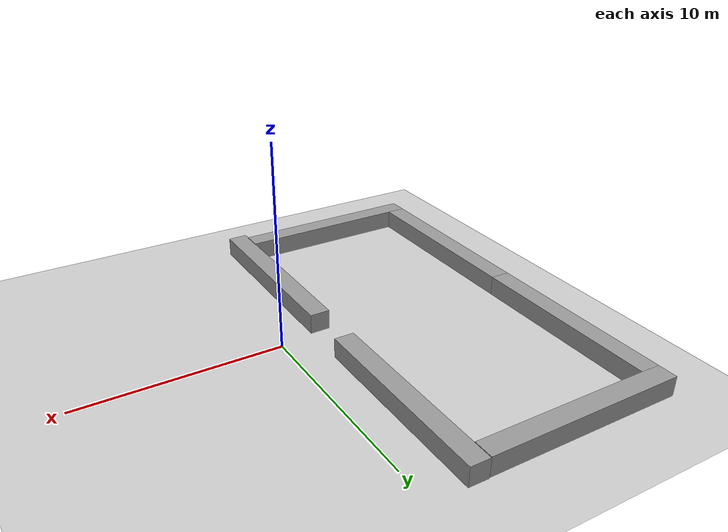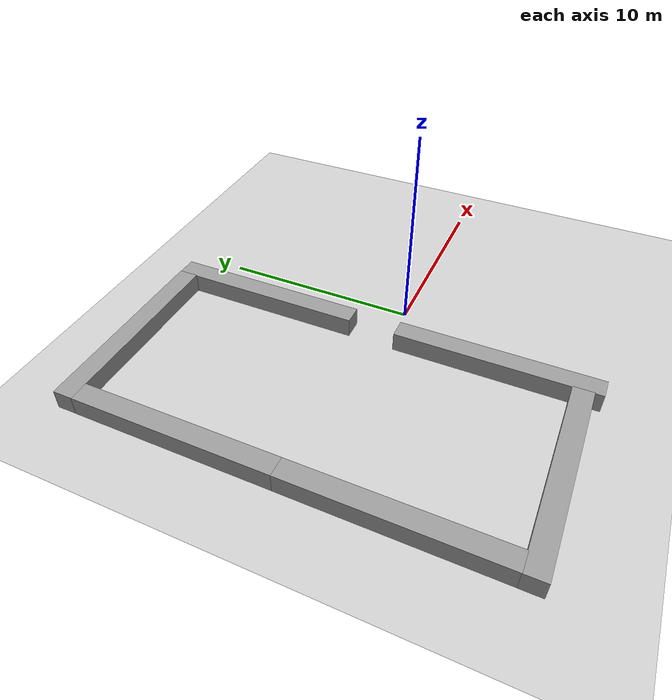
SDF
<sdf version="1.6">
 <world name="default">
  <physics name="default_physics" default="0" type="ode">
   <real_time_factor>1</real_time_factor>
   <real_time_update_rate>250</real_time_update_rate>
   <max_step_size>0.004</max_step_size>
   <ode>
    <solver>
     <iters>20</iters>
     <type>quick</type>
     <sor>1.3</sor>
     <use_dynamic_moi_rescaling>0</use_dynamic_moi_rescaling>
    </solver>
    <constraints>
     <cfm>0</cfm>
     <erp>0.2</erp>
     <contact_max_correcting_vel>100</contact_max_correcting_vel>
     <contact_surface_layer>0.001</contact_surface_layer>
    </constraints>
   </ode>
  </physics>
  <model name="ground_plane">
   <static>1</static>
   <link name="link">
    <collision name="collision">
     <geometry><plane><normal>0 0 1</normal><size>100 100</size></plane></geometry>
     <surface>
      <contact><collide_bitmask>65535</collide_bitmask></contact>
      <friction><ode><mu>100</mu><mu2>50</mu2></ode></friction>
     </surface>
    </collision>
    <visual name="visual">
     <cast_shadows>0</cast_shadows>
     <geometry><plane><normal>0 0 1</normal><size>100 100</size></plane></geometry>
     <material>
      <script><uri>file://media/materials/scripts/gazebo.material</uri><name>Gazebo/Grey</name></script>
     </material>
    </visual>
   </link>
  </model>
  <light name="sun" type="directional">
   <pose>0 0 10 0 -0 0</pose>
   <diffuse>0.8 0.8 0.8 1</diffuse>
   <specular>0.2 0.2 0.2 1</specular>
   <attenuation>
    <range>1000</range>
    <constant>0.9</constant>
    <linear>0.01</linear>
    <quadratic>0.001</quadratic>
   </attenuation>
   <direction>-0.5 0.1 -0.9</direction>
  </light>
  <scene>
   <grid>1</grid>
   <origin_visual>1</origin_visual>
   <ambient>0.8 0.8 0.8 1</ambient>
   <shadows>1</shadows>
   <background>0.7 0.7 0.7 1</background>
  </scene>
  <gravity>0 0 -9.8</gravity>
  <magnetic_field>6e-06 2.3e-05 -4.2e-05</magnetic_field>
  <atmosphere type="adiabatic"/>
  <audio><device>default</device></audio>
  <spherical_coordinates>
   <surface_model>EARTH_WGS84</surface_model>
   <latitude_deg>0</latitude_deg>
   <longitude_deg>0</longitude_deg>
   <elevation>0</elevation>
   <heading_deg>0</heading_deg>
  </spherical_coordinates>
  <model name="unit_box10">
   <link name="link">
    <inertial>
     <mass>10</mass>
     <inertia><ixx>84.1667</ixx><ixy>0</ixy><ixz>0</ixz><iyy>1.66667</iyy><iyz>0</iyz><izz>84.1667</izz></inertia>
    </inertial>
    <kinematic>1</kinematic>
    <pose>0 0 1.2228 0 -0 0</pose>
    <visual name="visual">
     <geometry><box><size>1 10 1</size></box></geometry>
     <material>
      <script><name>Gazebo/Grey</name><uri>file://media/materials/scripts/gazebo.material</uri></script>
      <shader type="vertex"><normal_map>__default__</normal_map></shader>
      <ambient>0.3 0.3 0.3 1</ambient>
      <diffuse>0.7 0.7 0.7 1</diffuse>
      <specular>0.01 0.01 0.01 1</specular>
      <emissive>0 0 0 1</emissive>
     </material>
    </visual>
    <collision name="collision">
     <geometry><box><size>1 10 1</size></box></geometry>
     <surface>
      <friction>
       <ode><mu>1</mu><mu2>1</mu2><fdir1>0 0 0</fdir1><slip1>0</slip1><slip2>0</slip2></ode>
       <torsional>
        <coefficient>1</coefficient>
        <patch_radius>0</patch_radius>
        <surface_radius>0</surface_radius>
        <use_patch_radius>1</use_patch_radius>
        <ode><slip>0</slip></ode>
       </torsional>
      </friction>
      <bounce><restitution_coefficient>0</restitution_coefficient><threshold>1e+06</threshold></bounce>
      <contact>
       <collide_without_contact>0</collide_without_contact>
       <collide_without_contact_bitmask>1</collide_without_contact_bitmask>
       <collide_bitmask>1</collide_bitmask>
       <ode>
        <soft_cfm>0</soft_cfm>
        <soft_erp>0.2</soft_erp>
        <kp>1e+13</kp>
        <kd>1</kd>
        <max_vel>0.01</max_vel>
        <min_depth>0</min_depth>
       </ode>
       <bullet>
        <split_impulse>1</split_impulse>
        <split_impulse_penetration_threshold>-0.01</split_impulse_penetration_threshold>
        <soft_cfm>0</soft_cfm>
        <soft_erp>0.2</soft_erp>
        <kp>1e+13</kp>
        <kd>1</kd>
       </bullet>
      </contact>
     </surface>
    </collision>
   </link>
   <static>0</static>
   <pose>-2.21747 7.01282 -0.734452 0 -0 0</pose>
  </model>
  <model name="unit_box10_0">
   <link name="link">
    <inertial>
     <mass>10</mass>
     <inertia><ixx>84.1667</ixx><ixy>0</ixy><ixz>0</ixz><iyy>1.66667</iyy><iyz>0</iyz><izz>84.1667</izz></inertia>
    </inertial>
    <kinematic>1</kinematic>
    <pose>0 0 1.2228 0 -0 0</pose>
    <visual name="visual">
     <geometry><box><size>1 10 1</size></box></geometry>
     <material>
      <script><name>Gazebo/Grey</name><uri>file://media/materials/scripts/gazebo.material</uri></script>
      <shader type="vertex"><normal_map>__default__</normal_map></shader>
      <ambient>0.3 0.3 0.3 1</ambient>
      <diffuse>0.7 0.7 0.7 1</diffuse>
      <specular>0.01 0.01 0.01 1</specular>
      <emissive>0 0 0 1</emissive>
     </material>
    </visual>
    <collision name="collision">
     <geometry><box><size>1 10 1</size></box></geometry>
     <surface>
      <friction>
       <ode><mu>1</mu><mu2>1</mu2><fdir1>0 0 0</fdir1><slip1>0</slip1><slip2>0</slip2></ode>
       <torsional>
        <coefficient>1</coefficient>
        <patch_radius>0</patch_radius>
        <surface_radius>0</surface_radius>
        <use_patch_radius>1</use_patch_radius>
        <ode><slip>0</slip></ode>
       </torsional>
      </friction>
      <bounce><restitution_coefficient>0</restitution_coefficient><threshold>1e+06</threshold></bounce>
      <contact>
       <collide_without_contact>0</collide_without_contact>
       <collide_without_contact_bitmask>1</collide_without_contact_bitmask>
       <collide_bitmask>1</collide_bitmask>
       <ode>
        <soft_cfm>0</soft_cfm>
        <soft_erp>0.2</soft_erp>
        <kp>1e+13</kp>
        <kd>1</kd>
        <max_vel>0.01</max_vel>
        <min_depth>0</min_depth>
       </ode>
       <bullet>
        <split_impulse>1</split_impulse>
        <split_impulse_penetration_threshold>-0.01</split_impulse_penetration_threshold>
        <soft_cfm>0</soft_cfm>
        <soft_erp>0.2</soft_erp>
        <kp>1e+13</kp>
        <kd>1</kd>
       </bullet>
      </contact>
     </surface>
    </collision>
   </link>
   <static>0</static>
   <pose>-2.24479 -5.35463 -0.734012 0 -0 0</pose>
  </model>
  <model name="unit_box10_1">
   <link name="link">
    <inertial>
     <mass>10</mass>
     <inertia><ixx>84.1667</ixx><ixy>0</ixy><ixz>0</ixz><iyy>1.66667</iyy><iyz>0</iyz><izz>84.1667</izz></inertia>
    </inertial>
    <kinematic>1</kinematic>
    <pose>0 0 1.2228 0 -0 0</pose>
    <visual name="visual">
     <geometry><box><size>1 10 1</size></box></geometry>
     <material>
      <script><name>Gazebo/Grey</name><uri>file://media/materials/scripts/gazebo.material</uri></script>
      <shader type="vertex"><normal_map>__default__</normal_map></shader>
      <ambient>0.3 0.3 0.3 1</ambient>
      <diffuse>0.7 0.7 0.7 1</diffuse>
      <specular>0.01 0.01 0.01 1</specular>
      <emissive>0 0 0 1</emissive>
     </material>
    </visual>
    <collision name="collision">
     <geometry><box><size>1 10 1</size></box></geometry>
     <surface>
      <friction>
       <ode><mu>1</mu><mu2>1</mu2><fdir1>0 0 0</fdir1><slip1>0</slip1><slip2>0</slip2></ode>
       <torsional>
        <coefficient>1</coefficient>
        <patch_radius>0</patch_radius>
        <surface_radius>0</surface_radius>
        <use_patch_radius>1</use_patch_radius>
        <ode><slip>0</slip></ode>
       </torsional>
      </friction>
      <bounce><restitution_coefficient>0</restitution_coefficient><threshold>1e+06</threshold></bounce>
      <contact>
       <collide_without_contact>0</collide_without_contact>
       <collide_without_contact_bitmask>1</collide_without_contact_bitmask>
       <collide_bitmask>1</collide_bitmask>
       <ode>
        <soft_cfm>0</soft_cfm>
        <soft_erp>0.2</soft_erp>
        <kp>1e+13</kp>
        <kd>1</kd>
        <max_vel>0.01</max_vel>
        <min_depth>0</min_depth>
       </ode>
       <bullet>
        <split_impulse>1</split_impulse>
        <split_impulse_penetration_threshold>-0.01</split_impulse_penetration_threshold>
        <soft_cfm>0</soft_cfm>
        <soft_erp>0.2</soft_erp>
        <kp>1e+13</kp>
        <kd>1</kd>
       </bullet>
      </contact>
     </surface>
    </collision>
   </link>
   <static>0</static>
   <pose>-12.2166 6.02771 -0.7 0 -0 0</pose>
  </model>
  <model name="unit_box10_2">
   <link name="link">
    <inertial>
     <mass>10</mass>
     <inertia><ixx>84.1667</ixx><ixy>0</ixy><ixz>0</ixz><iyy>1.66667</iyy><iyz>0</iyz><izz>84.1667</izz></inertia>
    </inertial>
    <kinematic>1</kinematic>
    <pose>0 0 1.2228 0 -0 0</pose>
    <visual name="visual">
     <geometry><box><size>1 10 1</size></box></geometry>
     <material>
      <script><name>Gazebo/Grey</name><uri>file://media/materials/scripts/gazebo.material</uri></script>
      <shader type="vertex"><normal_map>__default__</normal_map></shader>
      <ambient>0.3 0.3 0.3 1</ambient>
      <diffuse>0.7 0.7 0.7 1</diffuse>
      <specular>0.01 0.01 0.01 1</specular>
      <emissive>0 0 0 1</emissive>
     </material>
    </visual>
    <collision name="collision">
     <geometry><box><size>1 10 1</size></box></geometry>
     <surface>
      <friction>
       <ode><mu>1</mu><mu2>1</mu2><fdir1>0 0 0</fdir1><slip1>0</slip1><slip2>0</slip2></ode>
       <torsional>
        <coefficient>1</coefficient>
        <patch_radius>0</patch_radius>
        <surface_radius>0</surface_radius>
        <use_patch_radius>1</use_patch_radius>
        <ode><slip>0</slip></ode>
       </torsional>
      </friction>
      <bounce><restitution_coefficient>0</restitution_coefficient><threshold>1e+06</threshold></bounce>
      <contact>
       <collide_without_contact>0</collide_without_contact>
       <collide_without_contact_bitmask>1</collide_without_contact_bitmask>
       <collide_bitmask>1</collide_bitmask>
       <ode>
        <soft_cfm>0</soft_cfm>
        <soft_erp>0.2</soft_erp>
        <kp>1e+13</kp>
        <kd>1</kd>
        <max_vel>0.01</max_vel>
        <min_depth>0</min_depth>
       </ode>
       <bullet>
        <split_impulse>1</split_impulse>
        <split_impulse_penetration_threshold>-0.01</split_impulse_penetration_threshold>
        <soft_cfm>0</soft_cfm>
        <soft_erp>0.2</soft_erp>
        <kp>1e+13</kp>
        <kd>1</kd>
       </bullet>
      </contact>
     </surface>
    </collision>
   </link>
   <static>0</static>
   <pose>-12.2199 -3.95588 -0.7 0 -0 0</pose>
  </model>
  <model name="unit_box10_3">
   <link name="link">
    <inertial>
     <mass>10</mass>
     <inertia><ixx>84.1667</ixx><ixy>0</ixy><ixz>0</ixz><iyy>1.66667</iyy><iyz>0</iyz><izz>84.1667</izz></inertia>
    </inertial>
    <kinematic>1</kinematic>
    <pose>0 0 1.2228 0 -0 0</pose>
    <visual name="visual">
     <geometry><box><size>1 10 1</size></box></geometry>
     <material>
      <script><name>Gazebo/Grey</name><uri>file://media/materials/scripts/gazebo.material</uri></script>
      <shader type="vertex"><normal_map>__default__</normal_map></shader>
      <ambient>0.3 0.3 0.3 1</ambient>
      <diffuse>0.7 0.7 0.7 1</diffuse>
      <specular>0.01 0.01 0.01 1</specular>
      <emissive>0 0 0 1</emissive>
     </material>
    </visual>
    <collision name="collision">
     <geometry><box><size>1 10 1</size></box></geometry>
     <surface>
      <friction>
       <ode><mu>1</mu><mu2>1</mu2><fdir1>0 0 0</fdir1><slip1>0</slip1><slip2>0</slip2></ode>
       <torsional>
        <coefficient>1</coefficient>
        <patch_radius>0</patch_radius>
        <surface_radius>0</surface_radius>
        <use_patch_radius>1</use_patch_radius>
        <ode><slip>0</slip></ode>
       </torsional>
      </friction>
      <bounce><restitution_coefficient>0</restitution_coefficient><threshold>1e+06</threshold></bounce>
      <contact>
       <collide_without_contact>0</collide_without_contact>
       <collide_without_contact_bitmask>1</collide_without_contact_bitmask>
       <collide_bitmask>1</collide_bitmask>
       <ode>
        <soft_cfm>0</soft_cfm>
        <soft_erp>0.2</soft_erp>
        <kp>1e+13</kp>
        <kd>1</kd>
        <max_vel>0.01</max_vel>
        <min_depth>0</min_depth>
       </ode>
       <bullet>
        <split_impulse>1</split_impulse>
        <split_impulse_penetration_threshold>-0.01</split_impulse_penetration_threshold>
        <soft_cfm>0</soft_cfm>
        <soft_erp>0.2</soft_erp>
        <kp>1e+13</kp>
        <kd>1</kd>
       </bullet>
      </contact>
     </surface>
    </collision>
   </link>
   <static>0</static>
   <pose>-7.71319 11.5075 -0.7 0 0 -1.57</pose>
  </model>
  <model name="unit_box10_4">
   <link name="link">
    <inertial>
     <mass>10</mass>
     <inertia><ixx>84.1667</ixx><ixy>0</ixy><ixz>0</ixz><iyy>1.66667</iyy><iyz>0</iyz><izz>84.1667</izz></inertia>
    </inertial>
    <kinematic>1</kinematic>
    <pose>0 0 1.2228 0 -0 0</pose>
    <visual name="visual">
     <geometry><box><size>1 10 1</size></box></geometry>
     <material>
      <script><name>Gazebo/Grey</name><uri>file://media/materials/scripts/gazebo.material</uri></script>
      <shader type="vertex"><normal_map>__default__</normal_map></shader>
      <ambient>0.3 0.3 0.3 1</ambient>
      <diffuse>0.7 0.7 0.7 1</diffuse>
      <specular>0.01 0.01 0.01 1</specular>
      <emissive>0 0 0 1</emissive>
     </material>
    </visual>
    <collision name="collision">
     <geometry><box><size>1 10 1</size></box></geometry>
     <surface>
      <friction>
       <ode><mu>1</mu><mu2>1</mu2><fdir1>0 0 0</fdir1><slip1>0</slip1><slip2>0</slip2></ode>
       <torsional>
        <coefficient>1</coefficient>
        <patch_radius>0</patch_radius>
        <surface_radius>0</surface_radius>
        <use_patch_radius>1</use_patch_radius>
        <ode><slip>0</slip></ode>
       </torsional>
      </friction>
      <bounce><restitution_coefficient>0</restitution_coefficient><threshold>1e+06</threshold></bounce>
      <contact>
       <collide_without_contact>0</collide_without_contact>
       <collide_without_contact_bitmask>1</collide_without_contact_bitmask>
       <collide_bitmask>1</collide_bitmask>
       <ode>
        <soft_cfm>0</soft_cfm>
        <soft_erp>0.2</soft_erp>
        <kp>1e+13</kp>
        <kd>1</kd>
        <max_vel>0.01</max_vel>
        <min_depth>0</min_depth>
       </ode>
       <bullet>
        <split_impulse>1</split_impulse>
        <split_impulse_penetration_threshold>-0.01</split_impulse_penetration_threshold>
        <soft_cfm>0</soft_cfm>
        <soft_erp>0.2</soft_erp>
        <kp>1e+13</kp>
        <kd>1</kd>
       </bullet>
      </contact>
     </surface>
    </collision>
   </link>
   <static>0</static>
   <pose>-7.72435 -9.42549 -0.7 0 0 -1.57</pose>
  </model>
 </world>
</sdf>
